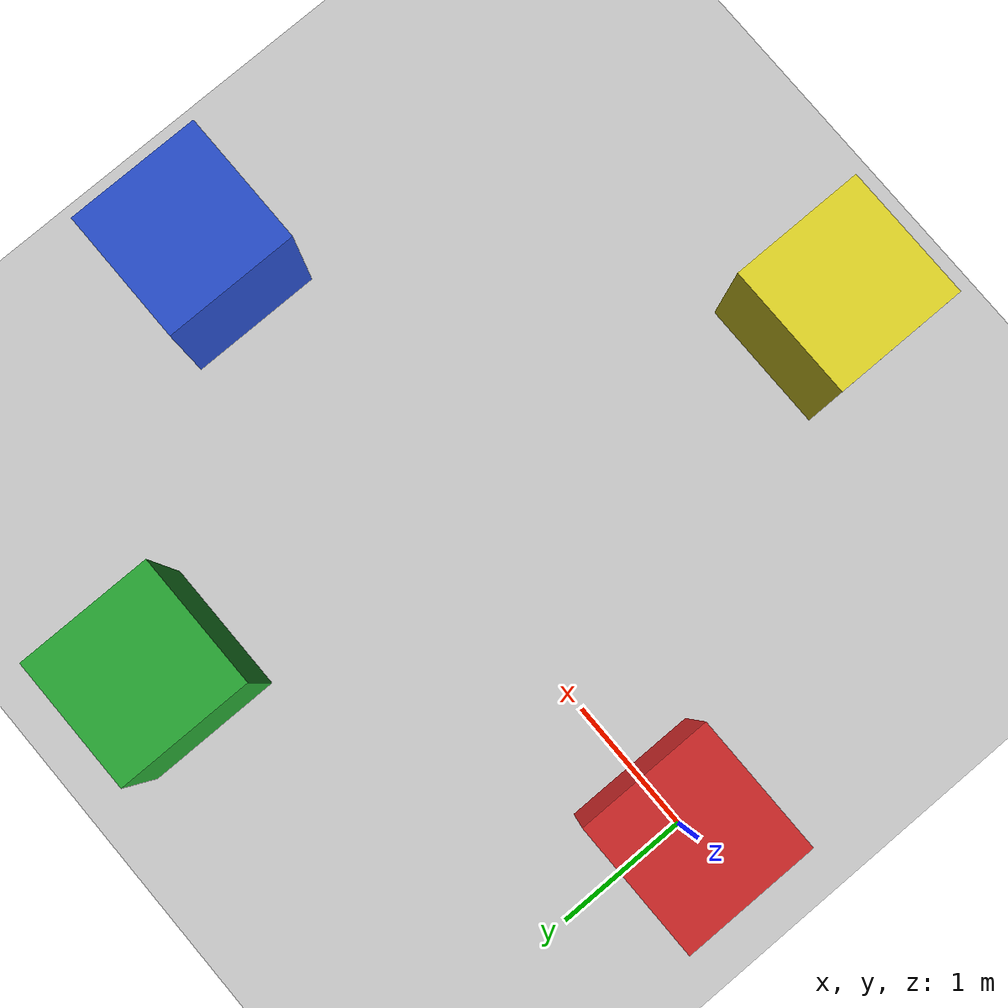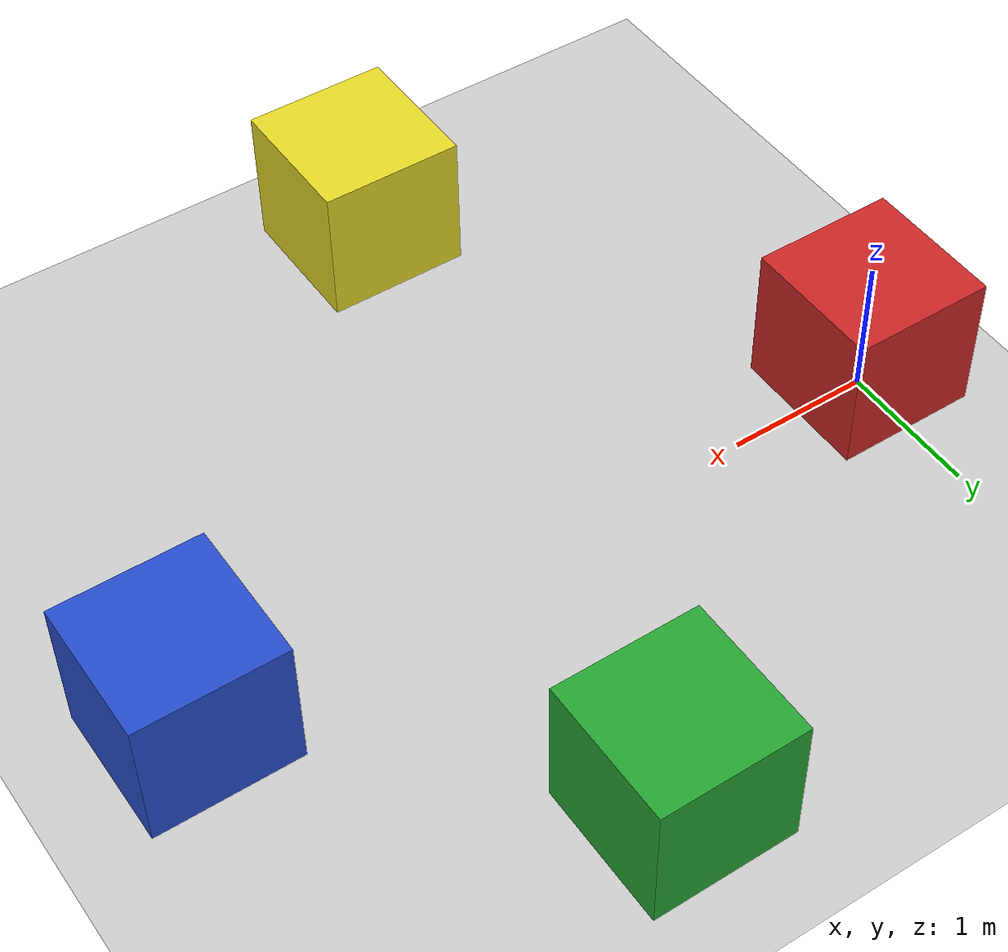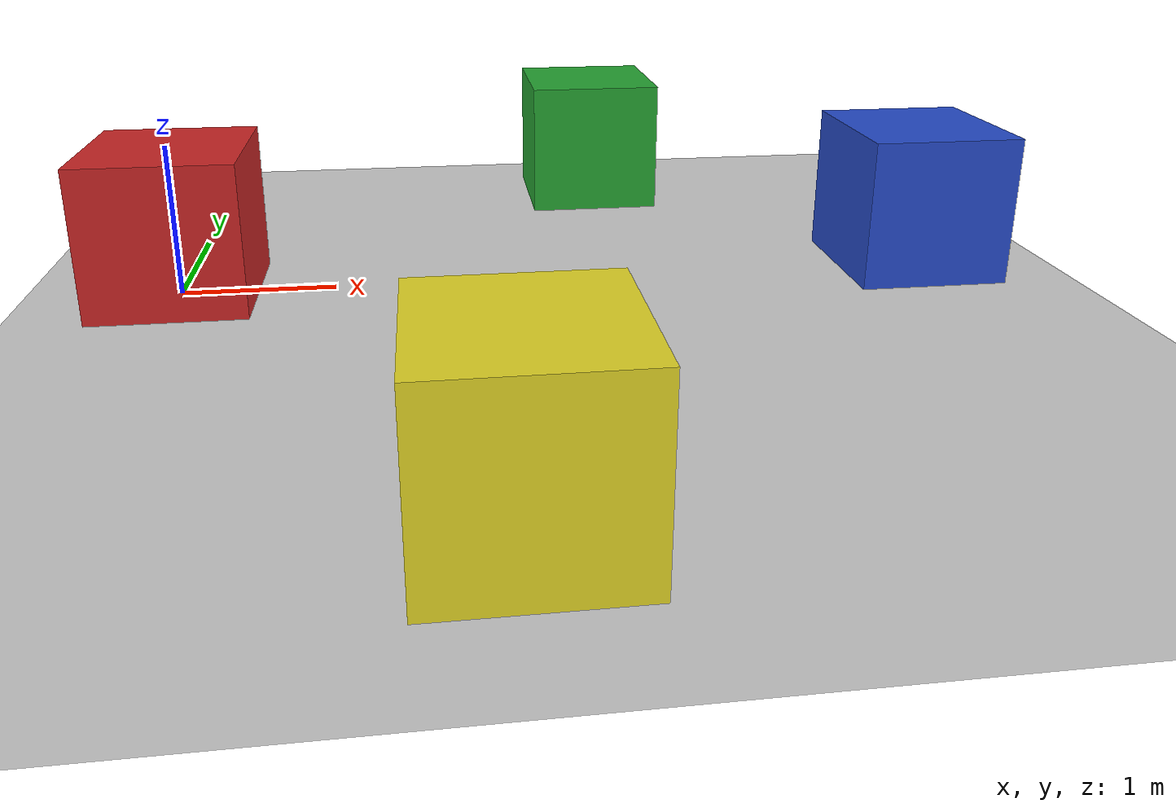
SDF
<?xml version="1.0" ?>
<sdf version="1.4">
  <world name="traveling_ethiopia_world">

    <!-- A global light source -->
    <include>
      <uri>model://sun</uri>
    </include>

    <!-- Ground plane -->
    <model name="ground_plane">
      <static>true</static>
      <link name="link">
        <collision name="collision">
          <geometry>
            <plane>
              <normal>0 0 1</normal>
              <size>100 100</size>
            </plane>
          </geometry>
        </collision>
        <visual name="visual">
          <geometry>
            <plane>
              <normal>0 0 1</normal>
              <size>100 100</size>
            </plane>
          </geometry>
          <material>
            <script>
              <uri>file://media/materials/scripts/gazebo.material</uri>
              <name>Gazebo/Grey</name>
            </script>
          </material>
        </visual>
      </link>
    </model>

    <!-- State markers (cities) - using Cartesian coordinates -->
    <!-- These coordinates should match Figure 5 -->
    <!-- Format: (x, y, z) in meters -->

    <!-- Addis Ababa at origin -->
    <model name="addis_ababa">
      <pose>0 0 0.5 0 0 0</pose>
      <static>true</static>
      <link name="link">
        <visual name="visual">
          <geometry>
            <box>
              <size>1 1 1</size>
            </box>
          </geometry>
          <material>
            <script>
              <uri>file://media/materials/scripts/gazebo.material</uri>
              <name>Gazebo/Red</name>
            </script>
          </material>
        </visual>
      </link>
    </model>

    <!-- Ambo -->
    <model name="ambo">
      <pose>5 0 0.5 0 0 0</pose>
      <static>true</static>
      <link name="link">
        <visual name="visual">
          <geometry>
            <box>
              <size>1 1 1</size>
            </box>
          </geometry>
          <material>
            <script>
              <uri>file://media/materials/scripts/gazebo.material</uri>
              <name>Gazebo/Blue</name>
            </script>
          </material>
        </visual>
      </link>
    </model>

    <!-- Buta Jirra -->
    <model name="buta_jirra">
      <pose>3 2 0.5 0 0 0</pose>
      <static>true</static>
      <link name="link">
        <visual name="visual">
          <geometry>
            <box>
              <size>1 1 1</size>
            </box>
          </geometry>
          <material>
            <script>
              <uri>file://media/materials/scripts/gazebo.material</uri>
              <name>Gazebo/Green</name>
            </script>
          </material>
        </visual>
      </link>
    </model>

    <!-- Wolkite -->
    <model name="wolkite">
      <pose>2 -3 0.5 0 0 0</pose>
      <static>true</static>
      <link name="link">
        <visual name="visual">
          <geometry>
            <box>
              <size>1 1 1</size>
            </box>
          </geometry>
          <material>
            <script>
              <uri>file://media/materials/scripts/gazebo.material</uri>
              <name>Gazebo/Yellow</name>
            </script>
          </material>
        </visual>
      </link>
    </model>

    <!-- Add more state markers based on Figure 5 -->
    <!-- Example coordinates - adjust based on actual figure -->

    <!-- Physics -->
    <physics type="ode">
      <gravity>0 0 -9.8</gravity>
      <ode>
        <solver>
          <type>quick</type>
          <iters>10</iters>
          <sor>1.3</sor>
          <use_dynamic_moi_rescaling>0</use_dynamic_moi_rescaling>
        </solver>
        <constraints>
          <cfm>0.00001</cfm>
          <erp>0.2</erp>
          <contact_max_correcting_vel>100</contact_max_correcting_vel>
          <contact_surface_layer>0.01</contact_surface_layer>
        </constraints>
      </ode>
      <max_step_size>0.004</max_step_size>
      <real_time_factor>1</real_time_factor>
      <real_time_update_rate>250</real_time_update_rate>
    </physics>

    <!-- Scene -->
    <scene>
      <ambient>0.4 0.4 0.4 1</ambient>
      <background>0.7 0.7 0.7 1</background>
      <shadows>true</shadows>
    </scene>

  </world>
</sdf>
